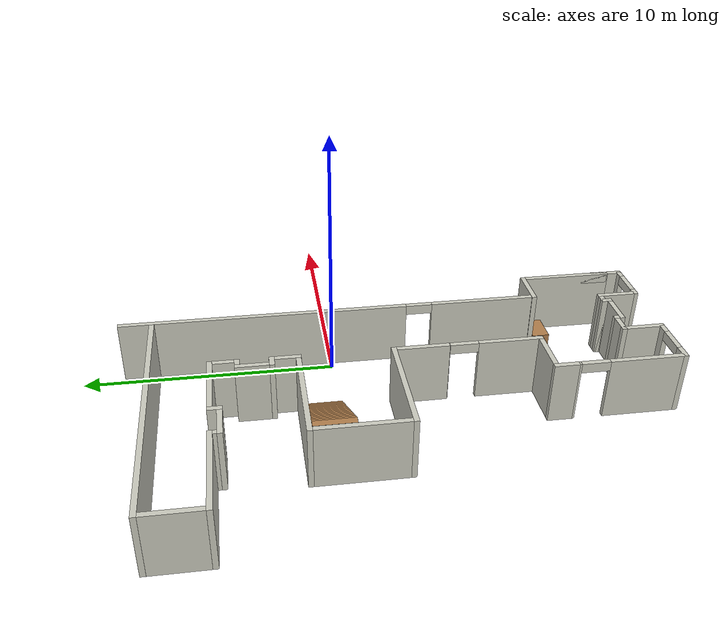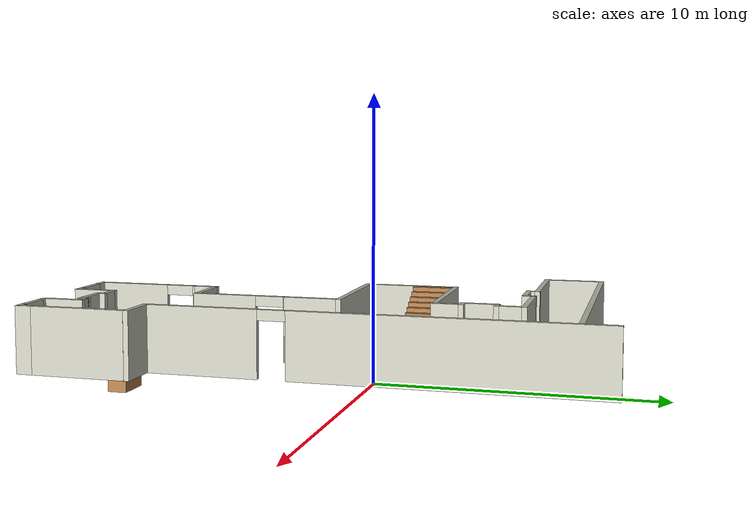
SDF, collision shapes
<?xml version='1.0'?>
<sdf version='1.4'>
  <model name='teknopark'>
    <link name='Stairs_0'>
      <visual name='Stairs_0_Visual_0'>
        <pose>-2.68456 0.684827 0.083333 0 0 -1.5708</pose>
        <geometry>
          <box>
            <size>1.55 0.283333 0.166667</size>
          </box>
        </geometry>
        <material>
          <script>
            <uri>file://media/materials/scripts/gazebo.material</uri>
            <name>Gazebo/WoodFloor</name>
          </script>
        </material>
      </visual>
      <collision name='Stairs_0_Collision_0'>
        <geometry>
          <box>
            <size>1.55 0.283333 0.166667</size>
          </box>
        </geometry>
        <pose>-2.68456 0.684827 0.083333 0 0 -1.5708</pose>
      </collision>
      <visual name='Stairs_0_Visual_1'>
        <pose>-2.96789 0.684827 0.25 0 0 -1.5708</pose>
        <geometry>
          <box>
            <size>1.55 0.283335 0.166668</size>
          </box>
        </geometry>
        <material>
          <script>
            <uri>file://media/materials/scripts/gazebo.material</uri>
            <name>Gazebo/WoodFloor</name>
          </script>
        </material>
      </visual>
      <collision name='Stairs_0_Collision_1'>
        <geometry>
          <box>
            <size>1.55 0.283335 0.166668</size>
          </box>
        </geometry>
        <pose>-2.96789 0.684827 0.25 0 0 -1.5708</pose>
      </collision>
      <visual name='Stairs_0_Visual_2'>
        <pose>-3.25122 0.684827 0.416667 0 0 -1.5708</pose>
        <geometry>
          <box>
            <size>1.55 0.283335 0.166668</size>
          </box>
        </geometry>
        <material>
          <script>
            <uri>file://media/materials/scripts/gazebo.material</uri>
            <name>Gazebo/WoodFloor</name>
          </script>
        </material>
      </visual>
      <collision name='Stairs_0_Collision_2'>
        <geometry>
          <box>
            <size>1.55 0.283335 0.166668</size>
          </box>
        </geometry>
        <pose>-3.25122 0.684827 0.416667 0 0 -1.5708</pose>
      </collision>
      <visual name='Stairs_0_Visual_3'>
        <pose>-3.53456 0.684827 0.583333 0 0 -1.5708</pose>
        <geometry>
          <box>
            <size>1.55 0.283335 0.166668</size>
          </box>
        </geometry>
        <material>
          <script>
            <uri>file://media/materials/scripts/gazebo.material</uri>
            <name>Gazebo/WoodFloor</name>
          </script>
        </material>
      </visual>
      <collision name='Stairs_0_Collision_3'>
        <geometry>
          <box>
            <size>1.55 0.283335 0.166668</size>
          </box>
        </geometry>
        <pose>-3.53456 0.684827 0.583333 0 0 -1.5708</pose>
      </collision>
      <visual name='Stairs_0_Visual_4'>
        <pose>-3.81789 0.684827 0.75 0 0 -1.5708</pose>
        <geometry>
          <box>
            <size>1.55 0.283335 0.166668</size>
          </box>
        </geometry>
        <material>
          <script>
            <uri>file://media/materials/scripts/gazebo.material</uri>
            <name>Gazebo/WoodFloor</name>
          </script>
        </material>
      </visual>
      <collision name='Stairs_0_Collision_4'>
        <geometry>
          <box>
            <size>1.55 0.283335 0.166668</size>
          </box>
        </geometry>
        <pose>-3.81789 0.684827 0.75 0 0 -1.5708</pose>
      </collision>
      <visual name='Stairs_0_Visual_5'>
        <pose>-4.10122 0.684827 0.916667 0 0 -1.5708</pose>
        <geometry>
          <box>
            <size>1.55 0.283335 0.166668</size>
          </box>
        </geometry>
        <material>
          <script>
            <uri>file://media/materials/scripts/gazebo.material</uri>
            <name>Gazebo/WoodFloor</name>
          </script>
        </material>
      </visual>
      <collision name='Stairs_0_Collision_5'>
        <geometry>
          <box>
            <size>1.55 0.283335 0.166668</size>
          </box>
        </geometry>
        <pose>-4.10122 0.684827 0.916667 0 0 -1.5708</pose>
      </collision>
      <visual name='Stairs_0_Visual_6'>
        <pose>-4.38456 0.684827 1.08333 0 0 -1.5708</pose>
        <geometry>
          <box>
            <size>1.55 0.283335 0.166668</size>
          </box>
        </geometry>
        <material>
          <script>
            <uri>file://media/materials/scripts/gazebo.material</uri>
            <name>Gazebo/WoodFloor</name>
          </script>
        </material>
      </visual>
      <collision name='Stairs_0_Collision_6'>
        <geometry>
          <box>
            <size>1.55 0.283335 0.166668</size>
          </box>
        </geometry>
        <pose>-4.38456 0.684827 1.08333 0 0 -1.5708</pose>
      </collision>
      <visual name='Stairs_0_Visual_7'>
        <pose>-4.66789 0.684827 1.25 0 0 -1.5708</pose>
        <geometry>
          <box>
            <size>1.55 0.283335 0.166668</size>
          </box>
        </geometry>
        <material>
          <script>
            <uri>file://media/materials/scripts/gazebo.material</uri>
            <name>Gazebo/WoodFloor</name>
          </script>
        </material>
      </visual>
      <collision name='Stairs_0_Collision_7'>
        <geometry>
          <box>
            <size>1.55 0.283335 0.166668</size>
          </box>
        </geometry>
        <pose>-4.66789 0.684827 1.25 0 0 -1.5708</pose>
      </collision>
      <visual name='Stairs_0_Visual_8'>
        <pose>-4.95122 0.684827 1.41667 0 0 -1.5708</pose>
        <geometry>
          <box>
            <size>1.55 0.283335 0.166668</size>
          </box>
        </geometry>
        <material>
          <script>
            <uri>file://media/materials/scripts/gazebo.material</uri>
            <name>Gazebo/WoodFloor</name>
          </script>
        </material>
      </visual>
      <collision name='Stairs_0_Collision_8'>
        <geometry>
          <box>
            <size>1.55 0.283335 0.166668</size>
          </box>
        </geometry>
        <pose>-4.95122 0.684827 1.41667 0 0 -1.5708</pose>
      </collision>
      <visual name='Stairs_0_Visual_9'>
        <pose>-5.23456 0.684827 1.58333 0 0 -1.5708</pose>
        <geometry>
          <box>
            <size>1.55 0.283335 0.166668</size>
          </box>
        </geometry>
        <material>
          <script>
            <uri>file://media/materials/scripts/gazebo.material</uri>
            <name>Gazebo/WoodFloor</name>
          </script>
        </material>
      </visual>
      <collision name='Stairs_0_Collision_9'>
        <geometry>
          <box>
            <size>1.55 0.283335 0.166668</size>
          </box>
        </geometry>
        <pose>-5.23456 0.684827 1.58333 0 0 -1.5708</pose>
      </collision>
      <visual name='Stairs_0_Visual_10'>
        <pose>-5.51789 0.684827 1.75 0 0 -1.5708</pose>
        <geometry>
          <box>
            <size>1.55 0.283335 0.166668</size>
          </box>
        </geometry>
        <material>
          <script>
            <uri>file://media/materials/scripts/gazebo.material</uri>
            <name>Gazebo/WoodFloor</name>
          </script>
        </material>
      </visual>
      <collision name='Stairs_0_Collision_10'>
        <geometry>
          <box>
            <size>1.55 0.283335 0.166668</size>
          </box>
        </geometry>
        <pose>-5.51789 0.684827 1.75 0 0 -1.5708</pose>
      </collision>
      <visual name='Stairs_0_Visual_11'>
        <pose>-5.80122 0.684828 1.91667 0 0 -1.5708</pose>
        <geometry>
          <box>
            <size>1.55 0.283335 0.166668</size>
          </box>
        </geometry>
        <material>
          <script>
            <uri>file://media/materials/scripts/gazebo.material</uri>
            <name>Gazebo/WoodFloor</name>
          </script>
        </material>
      </visual>
      <collision name='Stairs_0_Collision_11'>
        <geometry>
          <box>
            <size>1.55 0.283335 0.166668</size>
          </box>
        </geometry>
        <pose>-5.80122 0.684828 1.91667 0 0 -1.5708</pose>
      </collision>
      <visual name='Stairs_0_Visual_12'>
        <pose>-6.08456 0.684828 2.08333 0 0 -1.5708</pose>
        <geometry>
          <box>
            <size>1.55 0.283335 0.166668</size>
          </box>
        </geometry>
        <material>
          <script>
            <uri>file://media/materials/scripts/gazebo.material</uri>
            <name>Gazebo/WoodFloor</name>
          </script>
        </material>
      </visual>
      <collision name='Stairs_0_Collision_12'>
        <geometry>
          <box>
            <size>1.55 0.283335 0.166668</size>
          </box>
        </geometry>
        <pose>-6.08456 0.684828 2.08333 0 0 -1.5708</pose>
      </collision>
      <visual name='Stairs_0_Visual_13'>
        <pose>-6.36789 0.684828 2.25 0 0 -1.5708</pose>
        <geometry>
          <box>
            <size>1.55 0.283335 0.166668</size>
          </box>
        </geometry>
        <material>
          <script>
            <uri>file://media/materials/scripts/gazebo.material</uri>
            <name>Gazebo/WoodFloor</name>
          </script>
        </material>
      </visual>
      <collision name='Stairs_0_Collision_13'>
        <geometry>
          <box>
            <size>1.55 0.283335 0.166668</size>
          </box>
        </geometry>
        <pose>-6.36789 0.684828 2.25 0 0 -1.5708</pose>
      </collision>
      <visual name='Stairs_0_Visual_14'>
        <pose>-6.65122 0.684828 2.41667 0 0 -1.5708</pose>
        <geometry>
          <box>
            <size>1.55 0.283335 0.166668</size>
          </box>
        </geometry>
        <material>
          <script>
            <uri>file://media/materials/scripts/gazebo.material</uri>
            <name>Gazebo/WoodFloor</name>
          </script>
        </material>
      </visual>
      <collision name='Stairs_0_Collision_14'>
        <geometry>
          <box>
            <size>1.55 0.283335 0.166668</size>
          </box>
        </geometry>
        <pose>-6.65122 0.684828 2.41667 0 0 -1.5708</pose>
      </collision>
    </link>
    <link name='Wall_100'>
      <collision name='Wall_100_Collision'>
        <geometry>
          <box>
            <size>1.67115 0.2 2.5</size>
          </box>
        </geometry>
        <pose>0 0 1.25 0 -0 0</pose>
      </collision>
      <visual name='Wall_100_Visual'>
        <pose>0 0 1.25 0 -0 0</pose>
        <geometry>
          <box>
            <size>1.67115 0.2 2.5</size>
          </box>
        </geometry>
        <material>
          <script>
            <uri>file://media/materials/scripts/gazebo.material</uri>
            <name>Gazebo/PaintedWall</name>
          </script>
        </material>
      </visual>
      <velocity_decay>
        <linear>0</linear>
        <angular>0</angular>
      </velocity_decay>
      <pose>1.11843 -8.455 0 0 -0 3.14159</pose>
    </link>
    <link name='Wall_103'>
      <collision name='Wall_103_Collision'>
        <geometry>
          <box>
            <size>10.531 0.2 2.5</size>
          </box>
        </geometry>
        <pose>0 0 1.25 0 -0 0</pose>
      </collision>
      <visual name='Wall_103_Visual'>
        <pose>0 0 1.25 0 -0 0</pose>
        <geometry>
          <box>
            <size>10.531 0.2 2.5</size>
          </box>
        </geometry>
        <material>
          <script>
            <uri>file://media/materials/scripts/gazebo.material</uri>
            <name>Gazebo/PaintedWall</name>
          </script>
        </material>
      </visual>
      <velocity_decay>
        <linear>0</linear>
        <angular>0</angular>
      </velocity_decay>
      <pose>-4.9775 7.079 0 0 -0 0</pose>
    </link>
    <link name='Wall_105'>
      <pose>0.388 0 0 0 0 -1.5708</pose>
      <visual name='Wall_105_Visual_0'>
        <pose>-2.6592 0 1.25 0 -0 0</pose>
        <geometry>
          <box>
            <size>11.48 0.2 2.5</size>
          </box>
        </geometry>
        <material>
          <script>
            <uri>file://media/materials/scripts/gazebo.material</uri>
            <name>Gazebo/PaintedWall</name>
          </script>
        </material>
      </visual>
      <collision name='Wall_105_Collision_0'>
        <geometry>
          <box>
            <size>11.48 0.2 2.5</size>
          </box>
        </geometry>
        <pose>-2.6592 0 1.25 0 -0 0</pose>
      </collision>
      <visual name='Wall_105_Visual_1'>
        <pose>6.23923 0 1.25 0 -0 0</pose>
        <geometry>
          <box>
            <size>4.20841 0.2 2.5</size>
          </box>
        </geometry>
        <material>
          <script>
            <uri>file://media/materials/scripts/gazebo.material</uri>
            <name>Gazebo/PaintedWall</name>
          </script>
        </material>
      </visual>
      <collision name='Wall_105_Collision_1'>
        <geometry>
          <box>
            <size>4.20841 0.2 2.5</size>
          </box>
        </geometry>
        <pose>6.23923 0 1.25 0 -0 0</pose>
      </collision>
      <visual name='Wall_105_Visual_2'>
        <pose>3.58003 0 0 0 -0 -3.14</pose>
        <geometry>
			<mesh>
				<uri>file://Door_Component_BI3.dae</uri>
				<scale>1.2 1 1</scale>
			</mesh>
        </geometry>
        <material>
          <script>
            <uri>file://media/materials/scripts/gazebo.material</uri>
            <name>Gazebo/WoodPallet</name>
          </script>
        </material>
      </visual>
      <collision name='Wall_105_Collision_2'>
        <geometry>
          <box>
            <size>1.11 0.2 0.39</size>
          </box>
        </geometry>
        <pose>3.58003 0 2.305 0 -0 0</pose>
      </collision>
    </link>
    <link name='Wall_20'>
      <collision name='Wall_20_Collision'>
        <geometry>
          <box>
            <size>2.03 0.2 2.5</size>
          </box>
        </geometry>
        <pose>0 0 1.25 0 -0 0</pose>
      </collision>
      <visual name='Wall_20_Visual'>
        <pose>0 0 1.25 0 -0 0</pose>
        <geometry>
          <box>
            <size>2.03 0.2 2.5</size>
          </box>
        </geometry>
        <material>
          <script>
            <uri>file://media/materials/scripts/gazebo.material</uri>
            <name>Gazebo/PaintedWall</name>
          </script>
        </material>
      </visual>
      <velocity_decay>
        <linear>0</linear>
        <angular>0</angular>
      </velocity_decay>
      <pose>-10.1428 5.96463 0 0 0 -1.5708</pose>
    </link>
    <link name='Wall_23'>
      <collision name='Wall_23_Collision'>
        <geometry>
          <box>
            <size>3.71 0.2 2.5</size>
          </box>
        </geometry>
        <pose>0 0 1.25 0 -0 0</pose>
      </collision>
      <visual name='Wall_23_Visual'>
        <pose>0 0 1.25 0 -0 0</pose>
        <geometry>
          <box>
            <size>3.71 0.2 2.5</size>
          </box>
        </geometry>
        <material>
          <script>
            <uri>file://media/materials/scripts/gazebo.material</uri>
            <name>Gazebo/PaintedWall</name>
          </script>
        </material>
      </visual>
      <velocity_decay>
        <linear>0</linear>
        <angular>0</angular>
      </velocity_decay>
      <pose>-8.3878 4.84965 0 0 -0 0</pose>
    </link>
    <link name='Wall_25'>
      <collision name='Wall_25_Collision'>
        <geometry>
          <box>
            <size>0.34 0.2 2.5</size>
          </box>
        </geometry>
        <pose>0 0 1.25 0 -0 0</pose>
      </collision>
      <visual name='Wall_25_Visual'>
        <pose>0 0 1.25 0 -0 0</pose>
        <geometry>
          <box>
            <size>0.34 0.2 2.5</size>
          </box>
        </geometry>
        <material>
          <script>
            <uri>file://media/materials/scripts/gazebo.material</uri>
            <name>Gazebo/PaintedWall</name>
          </script>
        </material>
      </visual>
      <velocity_decay>
        <linear>0</linear>
        <angular>0</angular>
      </velocity_decay>
      <pose>-6.63289 4.77985 0 0 0 -1.5708</pose>
    </link>
    <link name='Wall_28'>
      <collision name='Wall_28_Collision'>
        <geometry>
          <box>
            <size>1.28 0.2 2.5</size>
          </box>
        </geometry>
        <pose>0 0 1.25 0 -0 0</pose>
      </collision>
      <visual name='Wall_28_Visual'>
        <pose>0 0 1.25 0 -0 0</pose>
        <geometry>
          <box>
            <size>1.28 0.2 2.5</size>
          </box>
        </geometry>
        <material>
          <script>
            <uri>file://media/materials/scripts/gazebo.material</uri>
            <name>Gazebo/PaintedWall</name>
          </script>
        </material>
      </visual>
      <velocity_decay>
        <linear>0</linear>
        <angular>0</angular>
      </velocity_decay>
      <pose>-6.09291 4.50972 0 0 -0 0</pose>
    </link>
    <link name='Wall_30'>
      <collision name='Wall_30_Collision'>
        <geometry>
          <box>
            <size>0.54 0.2 2.5</size>
          </box>
        </geometry>
        <pose>0 0 1.25 0 -0 0</pose>
      </collision>
      <visual name='Wall_30_Visual'>
        <pose>0 0 1.25 0 -0 0</pose>
        <geometry>
          <box>
            <size>0.54 0.2 2.5</size>
          </box>
        </geometry>
        <material>
          <script>
            <uri>file://media/materials/scripts/gazebo.material</uri>
            <name>Gazebo/PaintedWall</name>
          </script>
        </material>
      </visual>
      <velocity_decay>
        <linear>0</linear>
        <angular>0</angular>
      </velocity_decay>
      <pose>-5.35291 4.67972 0 0 -0 1.5708</pose>
    </link>
    <link name='Wall_32'>
      <collision name='Wall_32_Collision'>
        <geometry>
          <box>
            <size>2.71 0.2 2.5</size>
          </box>
        </geometry>
        <pose>0 0 1.25 0 -0 0</pose>
      </collision>
      <visual name='Wall_32_Visual'>
        <pose>0 0 1.25 0 -0 0</pose>
        <geometry>
          <box>
            <size>2.71 0.2 2.5</size>
          </box>
        </geometry>
        <material>
          <script>
            <uri>file://media/materials/scripts/gazebo.material</uri>
            <name>Gazebo/PaintedWall</name>
          </script>
        </material>
      </visual>
      <velocity_decay>
        <linear>0</linear>
        <angular>0</angular>
      </velocity_decay>
      <pose>-3.89791 4.84973 0 0 -0 0</pose>
    </link>
    <link name='Wall_34'>
      <collision name='Wall_34_Collision'>
        <geometry>
          <box>
            <size>0.81 0.2 2.5</size>
          </box>
        </geometry>
        <pose>0 0 1.25 0 -0 0</pose>
      </collision>
      <visual name='Wall_34_Visual'>
        <pose>0 0 1.25 0 -0 0</pose>
        <geometry>
          <box>
            <size>0.81 0.2 2.5</size>
          </box>
        </geometry>
        <material>
          <script>
            <uri>file://media/materials/scripts/gazebo.material</uri>
            <name>Gazebo/PaintedWall</name>
          </script>
        </material>
      </visual>
      <velocity_decay>
        <linear>0</linear>
        <angular>0</angular>
      </velocity_decay>
      <pose>-2.643 4.34463 0 0 0 -1.5708</pose>
    </link>
    <link name='Wall_36'>
      <collision name='Wall_36_Collision'>
        <geometry>
          <box>
            <size>0.33 0.2 2.5</size>
          </box>
        </geometry>
        <pose>0 0 1.25 0 -0 0</pose>
      </collision>
      <visual name='Wall_36_Visual'>
        <pose>0 0 1.25 0 -0 0</pose>
        <geometry>
          <box>
            <size>0.33 0.2 2.5</size>
          </box>
        </geometry>
        <material>
          <script>
            <uri>file://media/materials/scripts/gazebo.material</uri>
            <name>Gazebo/PaintedWall</name>
          </script>
        </material>
      </visual>
      <velocity_decay>
        <linear>0</linear>
        <angular>0</angular>
      </velocity_decay>
      <pose>-2.708 3.83963 0 0 -0 3.14159</pose>
    </link>
    <link name='Wall_38'>
      <collision name='Wall_38_Collision'>
        <geometry>
          <box>
            <size>1.28 0.2 2.5</size>
          </box>
        </geometry>
        <pose>0 0 1.25 0 -0 0</pose>
      </collision>
      <visual name='Wall_38_Visual'>
        <pose>0 0 1.25 0 -0 0</pose>
        <geometry>
          <box>
            <size>1.28 0.2 2.5</size>
          </box>
        </geometry>
        <material>
          <script>
            <uri>file://media/materials/scripts/gazebo.material</uri>
            <name>Gazebo/PaintedWall</name>
          </script>
        </material>
      </visual>
      <velocity_decay>
        <linear>0</linear>
        <angular>0</angular>
      </velocity_decay>
      <pose>-2.97261 3.29955 0 0 0 -1.5708</pose>
    </link>
    <link name='Wall_41'>
      <collision name='Wall_41_Collision'>
        <geometry>
          <box>
            <size>0.53 0.2 2.5</size>
          </box>
        </geometry>
        <pose>0 0 1.25 0 -0 0</pose>
      </collision>
      <visual name='Wall_41_Visual'>
        <pose>0 0 1.25 0 -0 0</pose>
        <geometry>
          <box>
            <size>0.53 0.2 2.5</size>
          </box>
        </geometry>
        <material>
          <script>
            <uri>file://media/materials/scripts/gazebo.material</uri>
            <name>Gazebo/PaintedWall</name>
          </script>
        </material>
      </visual>
      <velocity_decay>
        <linear>0</linear>
        <angular>0</angular>
      </velocity_decay>
      <pose>-2.80751 2.55973 0 0 -0 0</pose>
    </link>
    <link name='Wall_43'>
      <collision name='Wall_43_Collision'>
        <geometry>
          <box>
            <size>1 0.2 2.5</size>
          </box>
        </geometry>
        <pose>0 0 1.25 0 -0 0</pose>
      </collision>
      <visual name='Wall_43_Visual'>
        <pose>0 0 1.25 0 -0 0</pose>
        <geometry>
          <box>
            <size>1 0.2 2.5</size>
          </box>
        </geometry>
        <material>
          <script>
            <uri>file://media/materials/scripts/gazebo.material</uri>
            <name>Gazebo/PaintedWall</name>
          </script>
        </material>
      </visual>
      <velocity_decay>
        <linear>0</linear>
        <angular>0</angular>
      </velocity_decay>
      <pose>-2.64238 1.95978 0 0 0 -1.5708</pose>
    </link>
    <link name='Wall_45'>
      <collision name='Wall_45_Collision'>
        <geometry>
          <box>
            <size>4.26 0.2 2.5</size>
          </box>
        </geometry>
        <pose>0 0 1.25 0 -0 0</pose>
      </collision>
      <visual name='Wall_45_Visual'>
        <pose>0 0 1.25 0 -0 0</pose>
        <geometry>
          <box>
            <size>4.26 0.2 2.5</size>
          </box>
        </geometry>
        <material>
          <script>
            <uri>file://media/materials/scripts/gazebo.material</uri>
            <name>Gazebo/PaintedWall</name>
          </script>
        </material>
      </visual>
      <velocity_decay>
        <linear>0</linear>
        <angular>0</angular>
      </velocity_decay>
      <pose>-4.8698 1.56628 0 0 -0 0</pose>
    </link>
    <link name='Wall_47'>
      <collision name='Wall_47_Collision'>
        <geometry>
          <box>
            <size>3.41 0.2 2.5</size>
          </box>
        </geometry>
        <pose>0 0 1.25 0 -0 0</pose>
      </collision>
      <visual name='Wall_47_Visual'>
        <pose>0 0 1.25 0 -0 0</pose>
        <geometry>
          <box>
            <size>3.41 0.2 2.5</size>
          </box>
        </geometry>
        <material>
          <script>
            <uri>file://media/materials/scripts/gazebo.material</uri>
            <name>Gazebo/PaintedWall</name>
          </script>
        </material>
      </visual>
      <velocity_decay>
        <linear>0</linear>
        <angular>0</angular>
      </velocity_decay>
      <pose>-6.89993 -0.238412 0 0 0 -1.5708</pose>
    </link>
    <link name='Wall_49'>
      <collision name='Wall_49_Collision'>
        <geometry>
          <box>
            <size>4.46 0.2 2.5</size>
          </box>
        </geometry>
        <pose>0 0 1.25 0 -0 0</pose>
      </collision>
      <visual name='Wall_49_Visual'>
        <pose>0 0 1.25 0 -0 0</pose>
        <geometry>
          <box>
            <size>4.46 0.2 2.5</size>
          </box>
        </geometry>
        <material>
          <script>
            <uri>file://media/materials/scripts/gazebo.material</uri>
            <name>Gazebo/PaintedWall</name>
          </script>
        </material>
      </visual>
      <velocity_decay>
        <linear>0</linear>
        <angular>0</angular>
      </velocity_decay>
      <pose>-4.77 -2.043 0 0 -0 0</pose>
    </link>
    <link name='Wall_51'>
      <collision name='Wall_51_Collision'>
        <geometry>
          <box>
            <size>2.04 0.2 2.5</size>
          </box>
        </geometry>
        <pose>0 0 1.25 0 -0 0</pose>
      </collision>
      <visual name='Wall_51_Visual'>
        <pose>0 0 1.25 0 -0 0</pose>
        <geometry>
          <box>
            <size>2.04 0.2 2.5</size>
          </box>
        </geometry>
        <material>
          <script>
            <uri>file://media/materials/scripts/gazebo.material</uri>
            <name>Gazebo/PaintedWall</name>
          </script>
        </material>
      </visual>
      <velocity_decay>
        <linear>0</linear>
        <angular>0</angular>
      </velocity_decay>
      <pose>-2.63982 -3.16288 0 0 0 -1.5708</pose>
    </link>
    <link name='Wall_53'>
      <pose>-2.63984 -6.01827 0 0 0 -1.5708</pose>
      <visual name='Wall_53_Visual_0'>
        <pose>-1.82679 0 1.25 0 -0 0</pose>
        <geometry>
          <box>
            <size>0.016416 0.2 2.5</size>
          </box>
        </geometry>
        <material>
          <script>
            <uri>file://media/materials/scripts/gazebo.material</uri>
            <name>Gazebo/PaintedWall</name>
          </script>
        </material>
      </visual>
      <collision name='Wall_53_Collision_0'>
        <geometry>
          <box>
            <size>0.016416 0.2 2.5</size>
          </box>
        </geometry>
        <pose>-1.82679 0 1.25 0 -0 0</pose>
      </collision>
      <visual name='Wall_53_Visual_1'>
        <pose>0.563208 0 1.25 0 -0 0</pose>
        <geometry>
          <box>
            <size>2.54358 0.2 2.5</size>
          </box>
        </geometry>
        <material>
          <script>
            <uri>file://media/materials/scripts/gazebo.material</uri>
            <name>Gazebo/PaintedWall</name>
          </script>
        </material>
      </visual>
      <collision name='Wall_53_Collision_1'>
        <geometry>
          <box>
            <size>2.54358 0.2 2.5</size>
          </box>
        </geometry>
        <pose>0.563208 0 1.25 0 -0 0</pose>
      </collision>
      <visual name='Wall_53_Visual_2'>
        <pose>-1.26358 0 0 0 -0 0</pose>
        <geometry>
			<mesh>
				<uri>model://my_robot/Door_Component_BI3.dae</uri>
				<scale>1.2 1 1</scale>
			</mesh>
        </geometry>
        <material>
          <script>
            <uri>file://media/materials/scripts/gazebo.material</uri>
            <name>Gazebo/Red</name>
          </script>
        </material>
      </visual>
      <collision name='Wall_53_Collision_2'>
        <geometry>
          <box>
            <size>1.11 0.2 0.39</size>
          </box>
        </geometry>
        <pose>-1.26358 0 2.305 0 -0 0</pose>
      </collision>
    </link>
    <link name='Wall_55'>
      <collision name='Wall_55_Collision'>
        <geometry>
          <box>
            <size>1.66 0.2 2.5</size>
          </box>
        </geometry>
        <pose>0 0 1.25 0 -0 0</pose>
      </collision>
      <visual name='Wall_55_Visual'>
        <pose>0 0 1.25 0 -0 0</pose>
        <geometry>
          <box>
            <size>1.66 0.2 2.5</size>
          </box>
        </geometry>
        <material>
          <script>
            <uri>file://media/materials/scripts/gazebo.material</uri>
            <name>Gazebo/PaintedWall</name>
          </script>
        </material>
      </visual>
      <velocity_decay>
        <linear>0</linear>
        <angular>0</angular>
      </velocity_decay>
      <pose>-3.56972 -7.75355 0 0 -0 0</pose>
    </link>
    <link name='Wall_57'>
      <collision name='Wall_57_Collision'>
        <geometry>
          <box>
            <size>0.97 0.2 2.5</size>
          </box>
        </geometry>
        <pose>0 0 1.25 0 -0 0</pose>
      </collision>
      <visual name='Wall_57_Visual'>
        <pose>0 0 1.25 0 -0 0</pose>
        <geometry>
          <box>
            <size>0.97 0.2 2.5</size>
          </box>
        </geometry>
        <material>
          <script>
            <uri>file://media/materials/scripts/gazebo.material</uri>
            <name>Gazebo/PaintedWall</name>
          </script>
        </material>
      </visual>
      <velocity_decay>
        <linear>0</linear>
        <angular>0</angular>
      </velocity_decay>
      <pose>-4.49961 -8.13856 0 0 0 -1.5708</pose>
    </link>
    <link name='Wall_59'>
      <pose>-4.49961 -10.6486 0 0 0 -1.5708</pose>
      <visual name='Wall_59_Visual_0'>
        <pose>-1.98728 0 1.25 0 -0 0</pose>
        <geometry>
          <box>
            <size>0.075434 0.2 2.5</size>
          </box>
        </geometry>
        <material>
          <script>
            <uri>file://media/materials/scripts/gazebo.material</uri>
            <name>Gazebo/PaintedWall</name>
          </script>
        </material>
      </visual>
      <collision name='Wall_59_Collision_0'>
        <geometry>
          <box>
            <size>0.075434 0.2 2.5</size>
          </box>
        </geometry>
        <pose>-1.98728 0 1.25 0 -0 0</pose>
      </collision>
      <visual name='Wall_59_Visual_1'>
        <pose>0.592717 0 1.25 0 -0 0</pose>
        <geometry>
          <box>
            <size>2.86457 0.2 2.5</size>
          </box>
        </geometry>
        <material>
          <script>
            <uri>file://media/materials/scripts/gazebo.material</uri>
            <name>Gazebo/PaintedWall</name>
          </script>
        </material>
      </visual>
      <collision name='Wall_59_Collision_1'>
        <geometry>
          <box>
            <size>2.86457 0.2 2.5</size>
          </box>
        </geometry>
        <pose>0.592717 0 1.25 0 -0 0</pose>
      </collision>
      <visual name='Wall_59_Visual_2'>
        <pose>-1.39457 0 0 0 -0 0</pose>
        <geometry>
			<mesh>
				<uri>model://my_robot/Door_Component_BI3.dae</uri>
				<scale>1.2 1 1</scale>
			</mesh>
        </geometry>
        <material>
          <script>
            <uri>file://media/materials/scripts/gazebo.material</uri>
            <name>Gazebo/Green</name>
          </script>
        </material>
      </visual>
      <collision name='Wall_59_Collision_2'>
        <geometry>
          <box>
            <size>1.11 0.2 0.39</size>
          </box>
        </geometry>
        <pose>-1.39457 0 2.305 0 -0 0</pose>
      </collision>
    </link>
    <link name='Wall_61'>
      <pose>-3.53304 -12.725 0 0 -0 0</pose>
      <visual name='Wall_61_Visual_0'>
        <pose>-0.767027 0 1.25 0 -0 0</pose>
        <geometry>
          <box>
            <size>0.599864 0.2 2.5</size>
          </box>
        </geometry>
        <material>
          <script>
            <uri>file://media/materials/scripts/gazebo.material</uri>
            <name>Gazebo/PaintedWall</name>
          </script>
        </material>
      </visual>
      <collision name='Wall_61_Collision_0'>
        <geometry>
          <box>
            <size>0.599864 0.2 2.5</size>
          </box>
        </geometry>
        <pose>-0.767027 0 1.25 0 -0 0</pose>
      </collision>
      <visual name='Wall_61_Visual_1'>
        <pose>0.854932 0 1.25 0 -0 0</pose>
        <geometry>
          <box>
            <size>0.424054 0.2 2.5</size>
          </box>
        </geometry>
        <material>
          <script>
            <uri>file://media/materials/scripts/gazebo.material</uri>
            <name>Gazebo/PaintedWall</name>
          </script>
        </material>
      </visual>
      <collision name='Wall_61_Collision_1'>
        <geometry>
          <box>
            <size>0.424054 0.2 2.5</size>
          </box>
        </geometry>
        <pose>0.854932 0 1.25 0 -0 0</pose>
      </collision>
      <visual name='Wall_61_Visual_2'>
        <pose>0.087905 0 0 0 0 0 </pose>
        <geometry>
			<mesh>
				<uri>model://my_robot/Door_Component_BI3.dae</uri>
				<scale>1.2 1 1</scale>
			</mesh>
        </geometry>
        <material>
          <script>
            <uri>file://media/materials/scripts/gazebo.material</uri>
            <name>Gazebo/White</name>
          </script>
        </material>
      </visual>
      <collision name='Wall_61_Collision_2'>
        <geometry>
          <box>
            <size>1.11 0.2 0.39</size>
          </box>
        </geometry>
        <pose>0.087905 0 2.305 0 -0 0</pose>
      </collision>
    </link>
    <link name='Wall_63'>
      <collision name='Wall_63_Collision'>
        <geometry>
          <box>
            <size>1.728 0.2 2.5</size>
          </box>
        </geometry>
        <pose>0 0 1.25 0 -0 0</pose>
      </collision>
      <visual name='Wall_63_Visual'>
        <pose>0 0 1.25 0 -0 0</pose>
        <geometry>
          <box>
            <size>1.728 0.2 2.5</size>
          </box>
        </geometry>
        <material>
          <script>
            <uri>file://media/materials/scripts/gazebo.material</uri>
            <name>Gazebo/PaintedWall</name>
          </script>
        </material>
      </visual>
      <velocity_decay>
        <linear>0</linear>
        <angular>0</angular>
      </velocity_decay>
      <pose>-2.434 -11.961 0 0 -0 1.5708</pose>
    </link>
    <link name='Wall_68'>
      <collision name='Wall_68_Collision'>
        <geometry>
          <box>
            <size>0.808287 0.2 2.5</size>
          </box>
        </geometry>
        <pose>0 0 1.25 0 -0 0</pose>
      </collision>
      <visual name='Wall_68_Visual'>
        <pose>0 0 1.25 0 -0 0</pose>
        <geometry>
          <box>
            <size>0.808287 0.2 2.5</size>
          </box>
        </geometry>
        <material>
          <script>
            <uri>file://media/materials/scripts/gazebo.material</uri>
            <name>Gazebo/PaintedWall</name>
          </script>
        </material>
      </visual>
      <velocity_decay>
        <linear>0</linear>
        <angular>0</angular>
      </velocity_decay>
      <pose>-2.13 -11.197 0 0 -0 0</pose>
    </link>
    <link name='Wall_77'>
      <collision name='Wall_77_Collision'>
        <geometry>
          <box>
            <size>1.31 0.2 2.5</size>
          </box>
        </geometry>
        <pose>0 0 1.25 0 -0 0</pose>
      </collision>
      <visual name='Wall_77_Visual'>
        <pose>0 0 1.25 0 -0 0</pose>
        <geometry>
          <box>
            <size>1.31 0.2 2.5</size>
          </box>
        </geometry>
        <material>
          <script>
            <uri>file://media/materials/scripts/gazebo.material</uri>
            <name>Gazebo/PaintedWall</name>
          </script>
        </material>
      </visual>
      <velocity_decay>
        <linear>0</linear>
        <angular>0</angular>
      </velocity_decay>
      <pose>-1.077 -11.4304 0 0 -0 0</pose>
    </link>
    <link name='Wall_81'>
      <collision name='Wall_81_Collision'>
        <geometry>
          <box>
            <size>0.23 0.2 2.5</size>
          </box>
        </geometry>
        <pose>0 0 1.25 0 -0 0</pose>
      </collision>
      <visual name='Wall_81_Visual'>
        <pose>0 0 1.25 0 -0 0</pose>
        <geometry>
          <box>
            <size>0.23 0.2 2.5</size>
          </box>
        </geometry>
        <material>
          <script>
            <uri>file://media/materials/scripts/gazebo.material</uri>
            <name>Gazebo/PaintedWall</name>
          </script>
        </material>
      </visual>
      <velocity_decay>
        <linear>0</linear>
        <angular>0</angular>
      </velocity_decay>
      <pose>-1.632 -11.212 0 0 0 -1.5708</pose>
    </link>
    <link name='Wall_83'>
      <collision name='Wall_83_Collision'>
        <geometry>
          <box>
            <size>0.433 0.2 2.5</size>
          </box>
        </geometry>
        <pose>0 0 1.25 0 -0 0</pose>
      </collision>
      <visual name='Wall_83_Visual'>
        <pose>0 0 1.25 0 -0 0</pose>
        <geometry>
          <box>
            <size>0.433 0.2 2.5</size>
          </box>
        </geometry>
        <material>
          <script>
            <uri>file://media/materials/scripts/gazebo.material</uri>
            <name>Gazebo/PaintedWall</name>
          </script>
        </material>
      </visual>
      <velocity_decay>
        <linear>0</linear>
        <angular>0</angular>
      </velocity_decay>
      <pose>-0.328 -11.3135 0 0 -0 1.5708</pose>
    </link>
    <link name='Wall_92'>
      <pose>0.923368 -12.7092 0 0 -0 0</pose>
      <visual name='Wall_92_Visual_0'>
        <pose>-0.740724 0 1.25 0 -0 0</pose>
        <geometry>
          <box>
            <size>0.380309 0.2 2.5</size>
          </box>
        </geometry>
        <material>
          <script>
            <uri>file://media/materials/scripts/gazebo.material</uri>
            <name>Gazebo/PaintedWall</name>
          </script>
        </material>
      </visual>
      <collision name='Wall_92_Collision_0'>
        <geometry>
          <box>
            <size>0.380309 0.2 2.5</size>
          </box>
        </geometry>
        <pose>-0.740724 0 1.25 0 -0 0</pose>
      </collision>
      <visual name='Wall_92_Visual_1'>
        <pose>0.745154 0 1.25 0 -0 0</pose>
        <geometry>
          <box>
            <size>0.371448 0.2 2.5</size>
          </box>
        </geometry>
        <material>
          <script>
            <uri>file://media/materials/scripts/gazebo.material</uri>
            <name>Gazebo/PaintedWall</name>
          </script>
        </material>
      </visual>
      <collision name='Wall_92_Collision_1'>
        <geometry>
          <box>
            <size>0.371448 0.2 2.5</size>
          </box>
        </geometry>
        <pose>0.745154 0 1.25 0 -0 0</pose>
      </collision>
      <visual name='Wall_92_Visual_2'>
        <pose>0.00443 0 0 0 -0 0</pose>
        <geometry>
			<mesh>
				<uri>model://my_robot/Door_Component_BI3.dae</uri>
				<scale>1.2 1 1</scale>
			</mesh>
        </geometry>
        <material>
          <script>
            <uri>file://media/materials/scripts/gazebo.material</uri>
            <name>Gazebo/Blue</name>
          </script>
        </material>
      </visual>
      <collision name='Wall_92_Collision_2'>
        <geometry>
          <box>
            <size>1.11 0.2 0.39</size>
          </box>
        </geometry>
        <pose>0.00443 0 2.305 0 -0 0</pose>
      </collision>
    </link>
    <link name='Wall_94'>
      <collision name='Wall_94_Collision'>
        <geometry>
          <box>
            <size>0.43 0.2 2.5</size>
          </box>
        </geometry>
        <pose>0 0 1.25 0 -0 0</pose>
      </collision>
      <visual name='Wall_94_Visual'>
        <pose>0 0 1.25 0 -0 0</pose>
        <geometry>
          <box>
            <size>0.43 0.2 2.5</size>
          </box>
        </geometry>
        <material>
          <script>
            <uri>file://media/materials/scripts/gazebo.material</uri>
            <name>Gazebo/PaintedWall</name>
          </script>
        </material>
      </visual>
      <velocity_decay>
        <linear>0</linear>
        <angular>0</angular>
      </velocity_decay>
      <pose>-0.213 -11.197 0 0 -0 0</pose>
    </link>
    <link name='Wall_96'>
      <collision name='Wall_96_Collision'>
        <geometry>
          <box>
            <size>1.55 0.2 2.5</size>
          </box>
        </geometry>
        <pose>0 0 1.25 0 -0 0</pose>
      </collision>
      <visual name='Wall_96_Visual'>
        <pose>0 0 1.25 0 -0 0</pose>
        <geometry>
          <box>
            <size>1.55 0.2 2.5</size>
          </box>
        </geometry>
        <material>
          <script>
            <uri>file://media/materials/scripts/gazebo.material</uri>
            <name>Gazebo/PaintedWall</name>
          </script>
        </material>
      </visual>
      <velocity_decay>
        <linear>0</linear>
        <angular>0</angular>
      </velocity_decay>
      <pose>0.091 -11.872 0 0 0 -1.5708</pose>
    </link>
    <link name='Wall_98'>
      <pose>1.854 -11.257 0 0 -0 -1.5708</pose>
      <visual name='Wall_98_Visual_0'>
        <pose>-0.885729 0 1.25 0 -0 0</pose>
        <geometry>
          <box>
            <size>3.63 0.2 2.5</size>
          </box>
        </geometry>
        <material>
          <script>
            <uri>file://media/materials/scripts/gazebo.material</uri>
            <name>Gazebo/PaintedWall</name>
          </script>
        </material>
      </visual>
      <collision name='Wall_98_Collision_0'>
        <geometry>
          <box>
            <size>3.63 0.2 2.5</size>
          </box>
        </geometry>
        <pose>-0.885729 0 1.25 0 -0 0</pose>
      </collision>
      <visual name='Wall_98_Visual_1'>
        <pose>1.22127 0 1.25 0 -0 0</pose>
        <geometry>
          <box>
            <size>0.661457 0.2 2.5</size>
          </box>
        </geometry>
        <material>
          <script>
            <uri>file://media/materials/scripts/gazebo.material</uri>
            <name>Gazebo/PaintedWall</name>
          </script>
        </material>
      </visual>
      <collision name='Wall_98_Collision_1'>
        <geometry>
          <box>
            <size>0.661457 0.2 2.5</size>
          </box>
        </geometry>
        <pose>1.22127 0 1.25 0 -0 0</pose>
      </collision>
      <visual name='Wall_98_Visual_2'>
        <pose>0.335543 0 0 0 0 0</pose>
        <geometry>
	      <mesh>
		<uri>model://my_robot/Door_Component_BI3.dae</uri>
		<scale>1.2 1 1</scale>
	     </mesh>
        </geometry>
        <material>
          <script>
            <uri>file://media/materials/scripts/gazebo.material</uri>
            <name>Gazebo/Wood</name>
          </script>
        </material>
      </visual>
      <collision name='Wall_98_Collision_2'>
        <geometry>
          <box>
            <size>1.11 0.2 0.39</size>
          </box>
        </geometry>
        <pose>0.335543 0 2.305 0 -0 -3.1415926535897931</pose>
      </collision>
    </link>
    <link name="table_link">
		<pose>1 -9.0 0 0 0 0</pose>
		<collision name="table">
			<pose>0 0 0 0 0 0</pose>
			<geometry>
				<box>
					<size>1.20 0.70 1.0</size>
				</box>
			</geometry>
		</collision>
		<visual name='table_visual'>
			<pose>-0.4 -0.3 0 1.57 0 1.57</pose>
			<geometry>
				<mesh>
					<uri>model://my_robot/Computer Table.dae</uri>
					<scale>0.35 0.5 0.25</scale>
				</mesh>
				</geometry>
			<material>
				<script>
					<uri>file://media/materials/scripts/gazebo.material</uri>
					<name>Gazebo/WoodPallet</name>
				</script>
			</material>
		</visual>
    </link>
    <static>1</static>
  </model>

</sdf>
